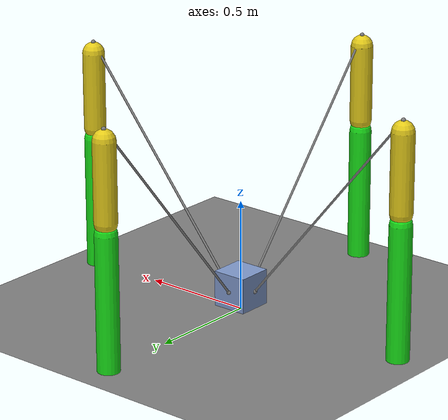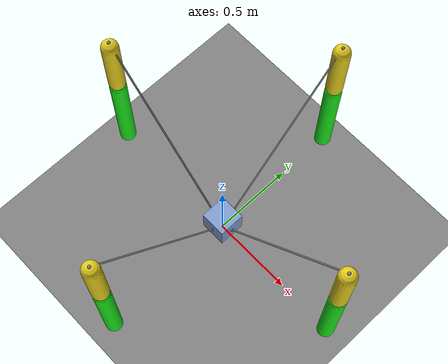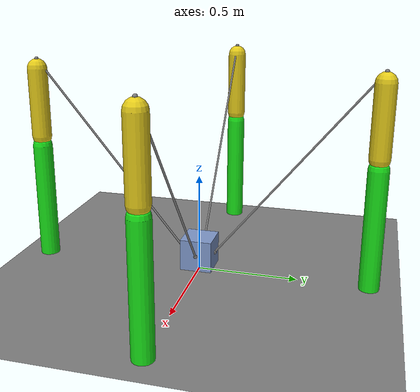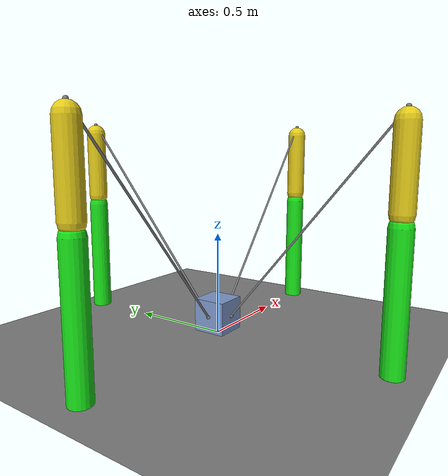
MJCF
<mujoco model="four_two_link_arms_obj">

<compiler coordinate="global" inertiafromgeom="true" angle="degree"/>

<default>
    <joint limited="true" damping="1" stiffness="0" armature=".1" user="0"/>
    <geom solref="0.008 1" solimp="0.95 0.95 0.01" margin="0.001" user="0"/>
    <motor ctrllimited="true" ctrlrange="-1 1"/>
    <position ctrllimited="true"/>

    <default class="0">
        <geom friction="1 0.005 0.001" rgba=".75 .6 .5 1" contype="1" conaffinity="0"/>
    </default>

    <default class="1">
        <geom friction="1 0.005 0.001" rgba=".7 .6 .55 1" contype="1" conaffinity="0"/>
    </default>

    <default class="2">
        <geom friction="1 0.005 0.001" rgba=".75 .6 .5 1" contype="1" conaffinity="0"/>
    </default>

     <default class="3">
        <geom friction="1 0.005 0.001" rgba=".75 .6 .5 1" contype="1" conaffinity="0"/>
    </default>

    <default class="arm1">
        <joint damping="5"/>
    </default>
     <default class="arm2">
        <joint damping="5"/>
    </default>
     <default class="arm3">
        <joint damping="5"/>
    </default>
    <default class="arm4">
        <joint damping="5"/>
    </default>
</default>

<option timestep="0.002" iterations="50" solver="PGS">
    <flag energy="enable"/>
</option>

<worldbody>
    <light diffuse=".5 .5 .5" pos="0 0 3" dir="0 0 -1"/>
    <geom type="plane" size="1 1 0.1" rgba=".5 .5 .5 1"/>

    <!--  ================= Two link manipulator 1 ================= /-->
    <body name="man1" >
        <joint class="arm1" name="1joint1" type="hinge" pos="0 -0.85 0" axis="1 0 0" range="-90 90" damping="5" stiffness="20" armature="0.02"/>
        <geom class="0" name="1link1" type="capsule" fromto="0 -0.85 0 0 -0.85 0.6" size=".05" rgba=".1 .9 .1 1"/>

        <body >
            <joint class="arm1" name="1joint2" type="hinge" pos="0 -0.85 0.65" axis="1 0 0" range="-90 90" damping="5" stiffness="20" armature="0.02"/>
            <geom class="0" name="link2" type="capsule" fromto="0 -0.85 0.65 0 -0.85 1.0" size=".05" rgba=".9 .8 .1 1"/>
            <site name="endA1" pos="0 -0.85 1.05" type="sphere" size="0.01"/>
        </body>

    </body>
      <!--  ================= Two link manipulator 2 ================= /-->
    <body name="man2">
        <joint class="arm2" name="2joint1" type="hinge" pos="0 0.85 0" axis="1 0 0" range="-90 90" damping="5" stiffness="20" armature="0.02"/>
        <geom class="1" name="2link1" type="capsule" fromto="0 0.85 0 0 0.85 0.6" size=".05" rgba=".1 .9 .1 1"/>

        <body >
            <joint class="arm2" name="2joint2" type="hinge" pos="0 0.85 0.65" axis="1 0 0" range="-90 90" damping="5" stiffness="20" armature="0.02"/>
            <geom class="1" name="2link2" type="capsule" fromto="0 0.85 0.65 0 0.85 1.0" size=".05" rgba=".9 .8 .1 1"/>
            <site name="endA2" pos="0 0.85 1.05" type="sphere" size="0.01"/>
        </body>

    </body>
      <!--  ================= Two link manipulator 3 ================= /-->
     <body name="man3">
        <joint class="arm3" name="3joint1" type="hinge" pos="0.85 0 0" axis="0 1 0" range="-90 90" damping="5" stiffness="20" armature="0.02"/>
        <geom class="2" name="3link1" type="capsule" fromto="0.85 0 0 0.85 0 0.6" size=".05" rgba=".1 .9 .1 1"/>

        <body >
            <joint class="arm3" name="3joint2" type="hinge" pos="0.85 0 0.65" axis="0 1 0" range="-90 90" damping="5" stiffness="20" armature="0.02"/>
            <geom class="2" name="3link2" type="capsule" fromto="0.85 0 0.65 0.85 0 1.0" size=".05" rgba=".9 .8 .1 1"/>
            <site name="endA3" pos="0.85 0 1.05" type="sphere" size="0.01"/>
        </body>

    </body>
     <!--  ================= Two link manipulator 4 ================= /-->
     <body name="man4">
        <joint class="arm4" name="4joint1" type="hinge" pos="-0.85 0 0" axis="0 1 0" range="-90 90" damping="5" stiffness="20" armature="0.02"/>
        <geom class="3" name="4link1" type="capsule" fromto="-0.85 0 0 -0.85 0 0.6" size=".05" rgba=".1 .9 .1 1"/>

        <body >
            <joint class="arm4" name="4joint2" type="hinge" pos="-0.85 0 0.65" axis="0 1 0" range="-90 90" damping="5" stiffness="20" armature="0.02"/>
            <geom class="3" name="4link2" type="capsule" fromto="-0.85 0 0.65 -0.85 0 1.0" size=".05" rgba=".9 .8 .1 1"/>
            <site name="endA4" pos="-0.85 0 1.05" type="sphere" size="0.01"/>
        </body>

    </body>

<!--  ================= Object ================= /-->
<body name="object">
    <joint name="fr" type="free" limited="false"/>
    <geom type="box" pos="0 0 0.1" size="0.08 0.08 0.08" rgba="0.5 0.6 0.8 1"/>
    <site name="endO1" pos="0 -0.08 0.1" type="sphere" size="0.01"/>
    <site name="endO2" pos="0 0.08 0.1" type="sphere" size="0.01"/>
    <site name="endO3" pos="0.08 0 0.1" type="sphere" size="0.01"/>
    <site name="endO4" pos="-0.08 0 0.1" type="sphere" size="0.01"/>
</body>

</worldbody>

<tendon>

    <spatial limited="true" range="0 0.6" width="0.005">
        <site site="endA1"/>
        <site site="endO1"/>
    </spatial>

    <spatial limited="true" range="0 0.6" width="0.005">
        <site site="endA2"/>
        <site site="endO2"/>
    </spatial>

    <spatial limited="true" range="0 0.6" width="0.005">
        <site site="endA3"/>
        <site site="endO3"/>
    </spatial>

    <spatial limited="true" range="0 0.6" width="0.005">
        <site site="endA4"/>
        <site site="endO4"/>
    </spatial>

</tendon>

<actuator>

<!--  ================= Torque actuators ================= -->

    <motor name="1joint1" gear="200" joint="1joint1" ctrlrange="-1 1"/>
    <motor name="1joint2" gear="200" joint="1joint2" ctrlrange="-1 1"/>

    <motor name="2joint1" gear="200" joint="2joint1" ctrlrange="-1 1"/>
    <motor name="2joint2" gear="200" joint="2joint2" ctrlrange="-1 1"/>

    <motor name="3joint1" gear="200" joint="3joint1" ctrlrange="-1 1"/>
    <motor name="3joint2" gear="200" joint="3joint2" ctrlrange="-1 1"/>

    <motor name="4Joint1" gear="200" joint="4joint1" ctrlrange="-1 1"/>
    <motor name="4Joint2" gear="200" joint="4joint2" ctrlrange="-1 1"/>

 <!--  ================= Position actuators ================= -->

</actuator>
</mujoco>
